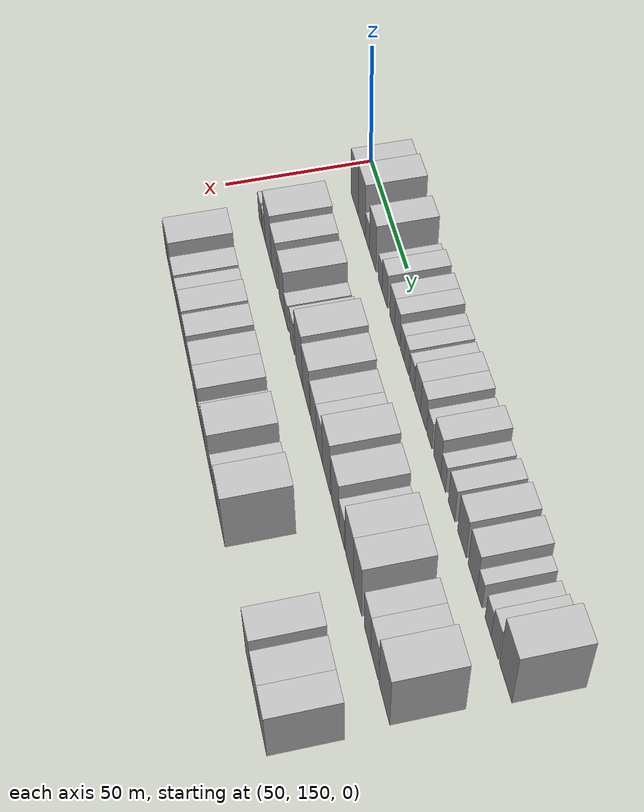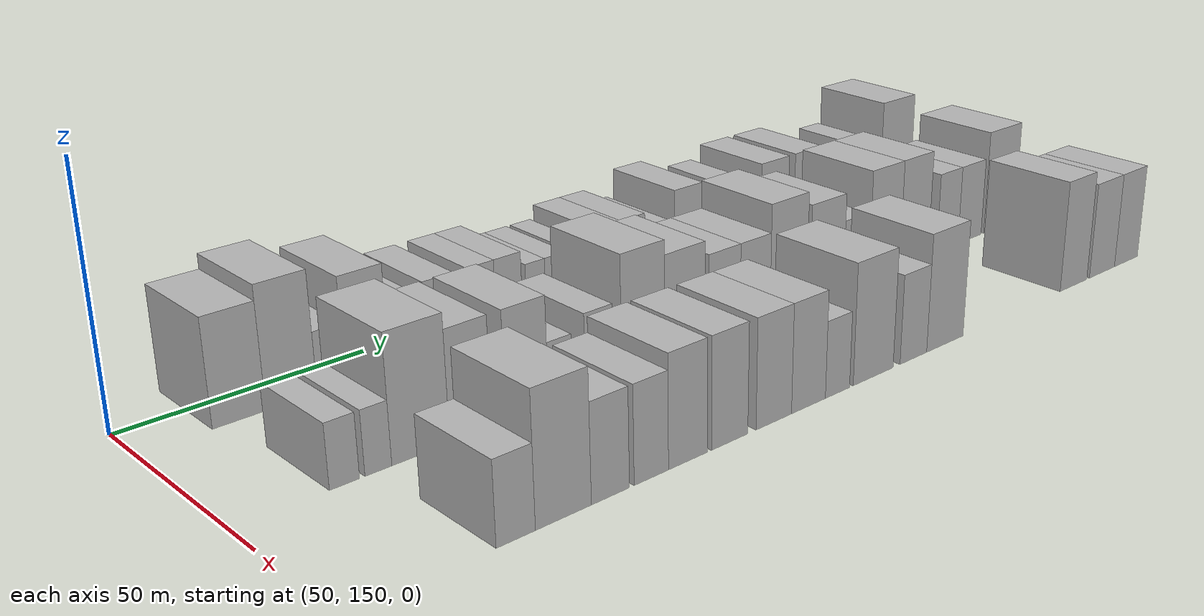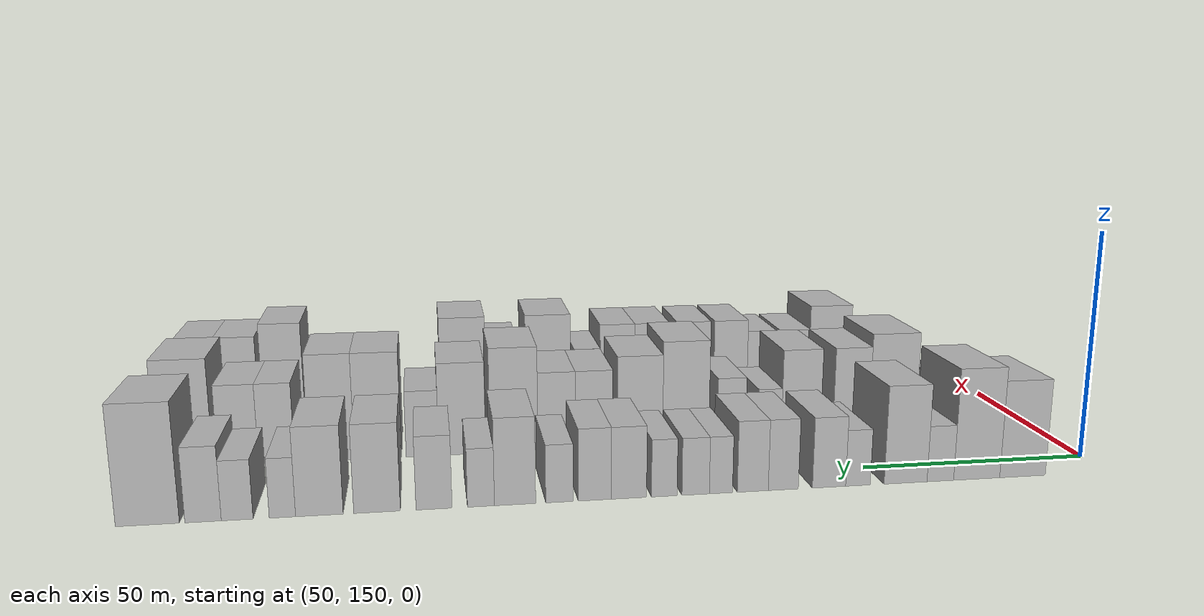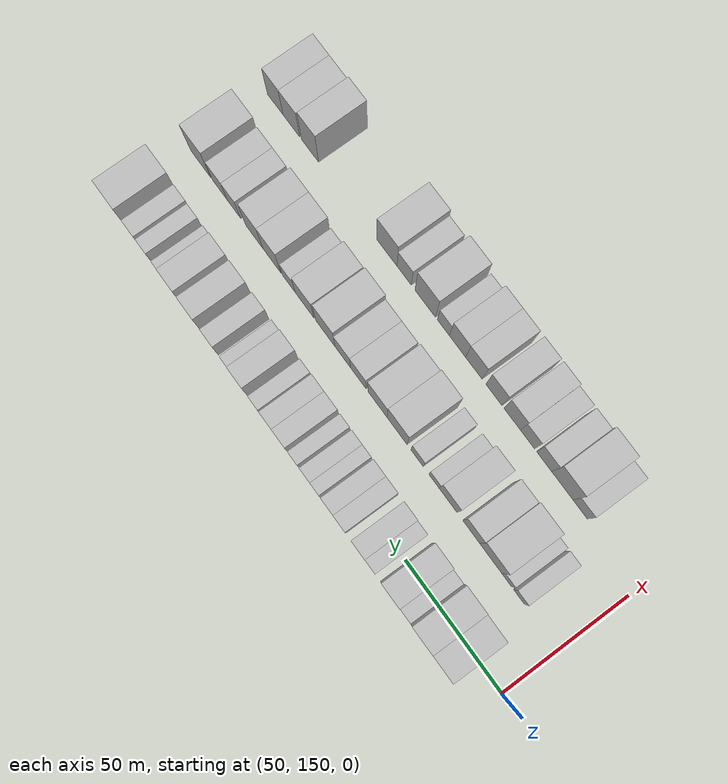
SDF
<sdf version="1.6">
 <world name="default">
  <model name="building_59">
   <static>1</static>
   <pose>50.0000 168.8208 0 0.000000 0.000000 0.000000</pose>
   <link name="link">
    <pose>0 0 10.50 0 0 0</pose>
    <collision name="collision"><geometry><box><size>20.0000 10.2211 21.0000</size></box></geometry></collision>
    <visual name="visual">
     <cast_shadows>0</cast_shadows>
     <geometry><box><size>20.0000 10.2211 21.0000</size></box></geometry>
     <material>
      <script>
       <uri>model://HANNAS_wall/materials/scripts</uri>
       <uri>model://HANNAS_wall/materials/textures</uri>
       <name>vrc/HANNAS_wall</name>
      </script>
     </material>
    </visual>
   </link>
  </model>
  <model name="building_60">
   <static>1</static>
   <pose>50.0000 179.0510 0 0.000000 0.000000 0.000000</pose>
   <link name="link">
    <pose>0 0 12.00 0 0 0</pose>
    <collision name="collision"><geometry><box><size>20.0000 10.2393 24.0000</size></box></geometry></collision>
    <visual name="visual">
     <cast_shadows>0</cast_shadows>
     <geometry><box><size>20.0000 10.2393 24.0000</size></box></geometry>
     <material>
      <script>
       <uri>model://HANNAS_wall/materials/scripts</uri>
       <uri>model://HANNAS_wall/materials/textures</uri>
       <name>vrc/HANNAS_wall</name>
      </script>
     </material>
    </visual>
   </link>
  </model>
  <model name="building_61">
   <static>1</static>
   <pose>50.0000 187.0893 0 0.000000 0.000000 0.000000</pose>
   <link name="link">
    <pose>0 0 6.00 0 0 0</pose>
    <collision name="collision"><geometry><box><size>20.0000 5.8373 12.0000</size></box></geometry></collision>
    <visual name="visual">
     <cast_shadows>0</cast_shadows>
     <geometry><box><size>20.0000 5.8373 12.0000</size></box></geometry>
     <material>
      <script>
       <uri>model://HANNAS_wall/materials/scripts</uri>
       <uri>model://HANNAS_wall/materials/textures</uri>
       <name>vrc/HANNAS_wall</name>
      </script>
     </material>
    </visual>
   </link>
  </model>
  <model name="building_62">
   <static>1</static>
   <pose>50.0000 194.6850 0 0.000000 0.000000 0.000000</pose>
   <link name="link">
    <pose>0 0 10.50 0 0 0</pose>
    <collision name="collision"><geometry><box><size>20.0000 9.3541 21.0000</size></box></geometry></collision>
    <visual name="visual">
     <cast_shadows>0</cast_shadows>
     <geometry><box><size>20.0000 9.3541 21.0000</size></box></geometry>
     <material>
      <script>
       <uri>model://HANNAS_wall/materials/scripts</uri>
       <uri>model://HANNAS_wall/materials/textures</uri>
       <name>vrc/HANNAS_wall</name>
      </script>
     </material>
    </visual>
   </link>
  </model>
  <model name="building_63">
   <static>1</static>
   <pose>50.0000 205.0098 0 0.000000 0.000000 0.000000</pose>
   <link name="link">
    <pose>0 0 6.00 0 0 0</pose>
    <collision name="collision"><geometry><box><size>20.0000 5.2954 12.0000</size></box></geometry></collision>
    <visual name="visual">
     <cast_shadows>0</cast_shadows>
     <geometry><box><size>20.0000 5.2954 12.0000</size></box></geometry>
     <material>
      <script>
       <uri>model://HANNAS_wall/materials/scripts</uri>
       <uri>model://HANNAS_wall/materials/textures</uri>
       <name>vrc/HANNAS_wall</name>
      </script>
     </material>
    </visual>
   </link>
  </model>
  <model name="building_64">
   <static>1</static>
   <pose>50.0000 211.2053 0 0.000000 0.000000 0.000000</pose>
   <link name="link">
    <pose>0 0 7.50 0 0 0</pose>
    <collision name="collision"><geometry><box><size>20.0000 7.0957 15.0000</size></box></geometry></collision>
    <visual name="visual">
     <cast_shadows>0</cast_shadows>
     <geometry><box><size>20.0000 7.0957 15.0000</size></box></geometry>
     <material>
      <script>
       <uri>model://HANNAS_wall/materials/scripts</uri>
       <uri>model://HANNAS_wall/materials/textures</uri>
       <name>vrc/HANNAS_wall</name>
      </script>
     </material>
    </visual>
   </link>
  </model>
  <model name="building_65">
   <static>1</static>
   <pose>50.0000 220.9267 0 0.000000 0.000000 0.000000</pose>
   <link name="link">
    <pose>0 0 7.50 0 0 0</pose>
    <collision name="collision"><geometry><box><size>20.0000 6.3471 15.0000</size></box></geometry></collision>
    <visual name="visual">
     <cast_shadows>0</cast_shadows>
     <geometry><box><size>20.0000 6.3471 15.0000</size></box></geometry>
     <material>
      <script>
       <uri>model://HANNAS_wall/materials/scripts</uri>
       <uri>model://HANNAS_wall/materials/textures</uri>
       <name>vrc/HANNAS_wall</name>
      </script>
     </material>
    </visual>
   </link>
  </model>
  <model name="building_66">
   <static>1</static>
   <pose>50.0000 227.3407 0 0.000000 0.000000 0.000000</pose>
   <link name="link">
    <pose>0 0 7.50 0 0 0</pose>
    <collision name="collision"><geometry><box><size>20.0000 6.4809 15.0000</size></box></geometry></collision>
    <visual name="visual">
     <cast_shadows>0</cast_shadows>
     <geometry><box><size>20.0000 6.4809 15.0000</size></box></geometry>
     <material>
      <script>
       <uri>model://HANNAS_wall/materials/scripts</uri>
       <uri>model://HANNAS_wall/materials/textures</uri>
       <name>vrc/HANNAS_wall</name>
      </script>
     </material>
    </visual>
   </link>
  </model>
  <model name="building_67">
   <static>1</static>
   <pose>50.0000 233.9903 0 0.000000 0.000000 0.000000</pose>
   <link name="link">
    <pose>0 0 6.00 0 0 0</pose>
    <collision name="collision"><geometry><box><size>20.0000 4.8182 12.0000</size></box></geometry></collision>
    <visual name="visual">
     <cast_shadows>0</cast_shadows>
     <geometry><box><size>20.0000 4.8182 12.0000</size></box></geometry>
     <material>
      <script>
       <uri>model://HANNAS_wall/materials/scripts</uri>
       <uri>model://HANNAS_wall/materials/textures</uri>
       <name>vrc/HANNAS_wall</name>
      </script>
     </material>
    </visual>
   </link>
  </model>
  <model name="building_68">
   <static>1</static>
   <pose>50.0000 239.2247 0 0.000000 0.000000 0.000000</pose>
   <link name="link">
    <pose>0 0 6.00 0 0 0</pose>
    <collision name="collision"><geometry><box><size>20.0000 5.6506 12.0000</size></box></geometry></collision>
    <visual name="visual">
     <cast_shadows>0</cast_shadows>
     <geometry><box><size>20.0000 5.6506 12.0000</size></box></geometry>
     <material>
      <script>
       <uri>model://HANNAS_wall/materials/scripts</uri>
       <uri>model://HANNAS_wall/materials/textures</uri>
       <name>vrc/HANNAS_wall</name>
      </script>
     </material>
    </visual>
   </link>
  </model>
  <model name="building_69">
   <static>1</static>
   <pose>50.0000 245.6717 0 0.000000 0.000000 0.000000</pose>
   <link name="link">
    <pose>0 0 6.00 0 0 0</pose>
    <collision name="collision"><geometry><box><size>20.0000 5.2436 12.0000</size></box></geometry></collision>
    <visual name="visual">
     <cast_shadows>0</cast_shadows>
     <geometry><box><size>20.0000 5.2436 12.0000</size></box></geometry>
     <material>
      <script>
       <uri>model://HANNAS_wall/materials/scripts</uri>
       <uri>model://HANNAS_wall/materials/textures</uri>
       <name>vrc/HANNAS_wall</name>
      </script>
     </material>
    </visual>
   </link>
  </model>
  <model name="building_70">
   <static>1</static>
   <pose>50.0000 252.8627 0 0.000000 0.000000 0.000000</pose>
   <link name="link">
    <pose>0 0 7.50 0 0 0</pose>
    <collision name="collision"><geometry><box><size>20.0000 7.1384 15.0000</size></box></geometry></collision>
    <visual name="visual">
     <cast_shadows>0</cast_shadows>
     <geometry><box><size>20.0000 7.1384 15.0000</size></box></geometry>
     <material>
      <script>
       <uri>model://HANNAS_wall/materials/scripts</uri>
       <uri>model://HANNAS_wall/materials/textures</uri>
       <name>vrc/HANNAS_wall</name>
      </script>
     </material>
    </visual>
   </link>
  </model>
  <model name="building_71">
   <static>1</static>
   <pose>50.0000 259.7722 0 0.000000 0.000000 0.000000</pose>
   <link name="link">
    <pose>0 0 7.50 0 0 0</pose>
    <collision name="collision"><geometry><box><size>20.0000 6.6804 15.0000</size></box></geometry></collision>
    <visual name="visual">
     <cast_shadows>0</cast_shadows>
     <geometry><box><size>20.0000 6.6804 15.0000</size></box></geometry>
     <material>
      <script>
       <uri>model://HANNAS_wall/materials/scripts</uri>
       <uri>model://HANNAS_wall/materials/textures</uri>
       <name>vrc/HANNAS_wall</name>
      </script>
     </material>
    </visual>
   </link>
  </model>
  <model name="building_72">
   <static>1</static>
   <pose>50.0000 266.8628 0 0.000000 0.000000 0.000000</pose>
   <link name="link">
    <pose>0 0 6.00 0 0 0</pose>
    <collision name="collision"><geometry><box><size>20.0000 5.5008 12.0000</size></box></geometry></collision>
    <visual name="visual">
     <cast_shadows>0</cast_shadows>
     <geometry><box><size>20.0000 5.5008 12.0000</size></box></geometry>
     <material>
      <script>
       <uri>model://HANNAS_wall/materials/scripts</uri>
       <uri>model://HANNAS_wall/materials/textures</uri>
       <name>vrc/HANNAS_wall</name>
      </script>
     </material>
    </visual>
   </link>
  </model>
  <model name="building_73">
   <static>1</static>
   <pose>50.0000 275.6861 0 0.000000 0.000000 0.000000</pose>
   <link name="link">
    <pose>0 0 9.00 0 0 0</pose>
    <collision name="collision"><geometry><box><size>20.0000 8.1459 18.0000</size></box></geometry></collision>
    <visual name="visual">
     <cast_shadows>0</cast_shadows>
     <geometry><box><size>20.0000 8.1459 18.0000</size></box></geometry>
     <material>
      <script>
       <uri>model://HANNAS_wall/materials/scripts</uri>
       <uri>model://HANNAS_wall/materials/textures</uri>
       <name>vrc/HANNAS_wall</name>
      </script>
     </material>
    </visual>
   </link>
  </model>
  <model name="building_74">
   <static>1</static>
   <pose>50.0000 282.4000 0 0.000000 0.000000 0.000000</pose>
   <link name="link">
    <pose>0 0 6.00 0 0 0</pose>
    <collision name="collision"><geometry><box><size>20.0000 5.2819 12.0000</size></box></geometry></collision>
    <visual name="visual">
     <cast_shadows>0</cast_shadows>
     <geometry><box><size>20.0000 5.2819 12.0000</size></box></geometry>
     <material>
      <script>
       <uri>model://HANNAS_wall/materials/scripts</uri>
       <uri>model://HANNAS_wall/materials/textures</uri>
       <name>vrc/HANNAS_wall</name>
      </script>
     </material>
    </visual>
   </link>
  </model>
  <model name="building_75">
   <static>1</static>
   <pose>50.0000 291.5356 0 0.000000 0.000000 0.000000</pose>
   <link name="link">
    <pose>0 0 7.50 0 0 0</pose>
    <collision name="collision"><geometry><box><size>20.0000 6.9893 15.0000</size></box></geometry></collision>
    <visual name="visual">
     <cast_shadows>0</cast_shadows>
     <geometry><box><size>20.0000 6.9893 15.0000</size></box></geometry>
     <material>
      <script>
       <uri>model://HANNAS_wall/materials/scripts</uri>
       <uri>model://HANNAS_wall/materials/textures</uri>
       <name>vrc/HANNAS_wall</name>
      </script>
     </material>
    </visual>
   </link>
  </model>
  <model name="building_76">
   <static>1</static>
   <pose>50.0000 302.4908 0 0.000000 0.000000 0.000000</pose>
   <link name="link">
    <pose>0 0 9.00 0 0 0</pose>
    <collision name="collision"><geometry><box><size>20.0000 8.9212 18.0000</size></box></geometry></collision>
    <visual name="visual">
     <cast_shadows>0</cast_shadows>
     <geometry><box><size>20.0000 8.9212 18.0000</size></box></geometry>
     <material>
      <script>
       <uri>model://HANNAS_wall/materials/scripts</uri>
       <uri>model://HANNAS_wall/materials/textures</uri>
       <name>vrc/HANNAS_wall</name>
      </script>
     </material>
    </visual>
   </link>
  </model>
  <model name="building_77">
   <static>1</static>
   <pose>50.0000 313.4377 0 0.000000 0.000000 0.000000</pose>
   <link name="link">
    <pose>0 0 9.00 0 0 0</pose>
    <collision name="collision"><geometry><box><size>20.0000 8.9725 18.0000</size></box></geometry></collision>
    <visual name="visual">
     <cast_shadows>0</cast_shadows>
     <geometry><box><size>20.0000 8.9725 18.0000</size></box></geometry>
     <material>
      <script>
       <uri>model://HANNAS_wall/materials/scripts</uri>
       <uri>model://HANNAS_wall/materials/textures</uri>
       <name>vrc/HANNAS_wall</name>
      </script>
     </material>
    </visual>
   </link>
  </model>
  <model name="building_78">
   <static>1</static>
   <pose>50.0000 320.3829 0 0.000000 0.000000 0.000000</pose>
   <link name="link">
    <pose>0 0 6.00 0 0 0</pose>
    <collision name="collision"><geometry><box><size>20.0000 4.9179 12.0000</size></box></geometry></collision>
    <visual name="visual">
     <cast_shadows>0</cast_shadows>
     <geometry><box><size>20.0000 4.9179 12.0000</size></box></geometry>
     <material>
      <script>
       <uri>model://HANNAS_wall/materials/scripts</uri>
       <uri>model://HANNAS_wall/materials/textures</uri>
       <name>vrc/HANNAS_wall</name>
      </script>
     </material>
    </visual>
   </link>
  </model>
  <model name="building_79">
   <static>1</static>
   <pose>50.0000 328.7776 0 0.000000 0.000000 0.000000</pose>
   <link name="link">
    <pose>0 0 6.00 0 0 0</pose>
    <collision name="collision"><geometry><box><size>20.0000 5.8714 12.0000</size></box></geometry></collision>
    <visual name="visual">
     <cast_shadows>0</cast_shadows>
     <geometry><box><size>20.0000 5.8714 12.0000</size></box></geometry>
     <material>
      <script>
       <uri>model://HANNAS_wall/materials/scripts</uri>
       <uri>model://HANNAS_wall/materials/textures</uri>
       <name>vrc/HANNAS_wall</name>
      </script>
     </material>
    </visual>
   </link>
  </model>
  <model name="building_80">
   <static>1</static>
   <pose>50.0000 335.0555 0 0.000000 0.000000 0.000000</pose>
   <link name="link">
    <pose>0 0 7.50 0 0 0</pose>
    <collision name="collision"><geometry><box><size>20.0000 6.6845 15.0000</size></box></geometry></collision>
    <visual name="visual">
     <cast_shadows>0</cast_shadows>
     <geometry><box><size>20.0000 6.6845 15.0000</size></box></geometry>
     <material>
      <script>
       <uri>model://HANNAS_wall/materials/scripts</uri>
       <uri>model://HANNAS_wall/materials/textures</uri>
       <name>vrc/HANNAS_wall</name>
      </script>
     </material>
    </visual>
   </link>
  </model>
  <model name="building_81">
   <static>1</static>
   <pose>50.0000 345.1932 0 0.000000 0.000000 0.000000</pose>
   <link name="link">
    <pose>0 0 12.00 0 0 0</pose>
    <collision name="collision"><geometry><box><size>20.0000 11.5908 24.0000</size></box></geometry></collision>
    <visual name="visual">
     <cast_shadows>0</cast_shadows>
     <geometry><box><size>20.0000 11.5908 24.0000</size></box></geometry>
     <material>
      <script>
       <uri>model://HANNAS_wall/materials/scripts</uri>
       <uri>model://HANNAS_wall/materials/textures</uri>
       <name>vrc/HANNAS_wall</name>
      </script>
     </material>
    </visual>
   </link>
  </model>
  <model name="building_139">
   <static>1</static>
   <pose>82.0000 170.2102 0 0.000000 0.000000 0.000000</pose>
   <link name="link">
    <pose>0 0 6.00 0 0 0</pose>
    <collision name="collision"><geometry><box><size>20.0000 5.5726 12.0000</size></box></geometry></collision>
    <visual name="visual">
     <cast_shadows>0</cast_shadows>
     <geometry><box><size>20.0000 5.5726 12.0000</size></box></geometry>
     <material>
      <script>
       <uri>model://HANNAS_wall/materials/scripts</uri>
       <uri>model://HANNAS_wall/materials/textures</uri>
       <name>vrc/HANNAS_wall</name>
      </script>
     </material>
    </visual>
   </link>
  </model>
  <model name="building_140">
   <static>1</static>
   <pose>82.0000 176.5532 0 0.000000 0.000000 0.000000</pose>
   <link name="link">
    <pose>0 0 6.00 0 0 0</pose>
    <collision name="collision"><geometry><box><size>20.0000 5.1133 12.0000</size></box></geometry></collision>
    <visual name="visual">
     <cast_shadows>0</cast_shadows>
     <geometry><box><size>20.0000 5.1133 12.0000</size></box></geometry>
     <material>
      <script>
       <uri>model://HANNAS_wall/materials/scripts</uri>
       <uri>model://HANNAS_wall/materials/textures</uri>
       <name>vrc/HANNAS_wall</name>
      </script>
     </material>
    </visual>
   </link>
  </model>
  <model name="building_141">
   <static>1</static>
   <pose>82.0000 184.8595 0 0.000000 0.000000 0.000000</pose>
   <link name="link">
    <pose>0 0 12.00 0 0 0</pose>
    <collision name="collision"><geometry><box><size>20.0000 11.4994 24.0000</size></box></geometry></collision>
    <visual name="visual">
     <cast_shadows>0</cast_shadows>
     <geometry><box><size>20.0000 11.4994 24.0000</size></box></geometry>
     <material>
      <script>
       <uri>model://HANNAS_wall/materials/scripts</uri>
       <uri>model://HANNAS_wall/materials/textures</uri>
       <name>vrc/HANNAS_wall</name>
      </script>
     </material>
    </visual>
   </link>
  </model>
  <model name="building_142">
   <static>1</static>
   <pose>82.0000 194.9792 0 0.000000 0.000000 0.000000</pose>
   <link name="link">
    <pose>0 0 10.50 0 0 0</pose>
    <collision name="collision"><geometry><box><size>20.0000 8.7399 21.0000</size></box></geometry></collision>
    <visual name="visual">
     <cast_shadows>0</cast_shadows>
     <geometry><box><size>20.0000 8.7399 21.0000</size></box></geometry>
     <material>
      <script>
       <uri>model://HANNAS_wall/materials/scripts</uri>
       <uri>model://HANNAS_wall/materials/textures</uri>
       <name>vrc/HANNAS_wall</name>
      </script>
     </material>
    </visual>
   </link>
  </model>
  <model name="building_143">
   <static>1</static>
   <pose>82.0000 207.0401 0 0.000000 0.000000 0.000000</pose>
   <link name="link">
    <pose>0 0 10.50 0 0 0</pose>
    <collision name="collision"><geometry><box><size>20.0000 9.3818 21.0000</size></box></geometry></collision>
    <visual name="visual">
     <cast_shadows>0</cast_shadows>
     <geometry><box><size>20.0000 9.3818 21.0000</size></box></geometry>
     <material>
      <script>
       <uri>model://HANNAS_wall/materials/scripts</uri>
       <uri>model://HANNAS_wall/materials/textures</uri>
       <name>vrc/HANNAS_wall</name>
      </script>
     </material>
    </visual>
   </link>
  </model>
  <model name="building_144">
   <static>1</static>
   <pose>82.0000 214.4838 0 0.000000 0.000000 0.000000</pose>
   <link name="link">
    <pose>0 0 6.00 0 0 0</pose>
    <collision name="collision"><geometry><box><size>20.0000 5.5058 12.0000</size></box></geometry></collision>
    <visual name="visual">
     <cast_shadows>0</cast_shadows>
     <geometry><box><size>20.0000 5.5058 12.0000</size></box></geometry>
     <material>
      <script>
       <uri>model://HANNAS_wall/materials/scripts</uri>
       <uri>model://HANNAS_wall/materials/textures</uri>
       <name>vrc/HANNAS_wall</name>
      </script>
     </material>
    </visual>
   </link>
  </model>
  <model name="building_145">
   <static>1</static>
   <pose>82.0000 223.5558 0 0.000000 0.000000 0.000000</pose>
   <link name="link">
    <pose>0 0 7.50 0 0 0</pose>
    <collision name="collision"><geometry><box><size>20.0000 6.6380 15.0000</size></box></geometry></collision>
    <visual name="visual">
     <cast_shadows>0</cast_shadows>
     <geometry><box><size>20.0000 6.6380 15.0000</size></box></geometry>
     <material>
      <script>
       <uri>model://HANNAS_wall/materials/scripts</uri>
       <uri>model://HANNAS_wall/materials/textures</uri>
       <name>vrc/HANNAS_wall</name>
      </script>
     </material>
    </visual>
   </link>
  </model>
  <model name="building_146">
   <static>1</static>
   <pose>82.0000 234.2435 0 0.000000 0.000000 0.000000</pose>
   <link name="link">
    <pose>0 0 12.00 0 0 0</pose>
    <collision name="collision"><geometry><box><size>20.0000 10.7374 24.0000</size></box></geometry></collision>
    <visual name="visual">
     <cast_shadows>0</cast_shadows>
     <geometry><box><size>20.0000 10.7374 24.0000</size></box></geometry>
     <material>
      <script>
       <uri>model://HANNAS_wall/materials/scripts</uri>
       <uri>model://HANNAS_wall/materials/textures</uri>
       <name>vrc/HANNAS_wall</name>
      </script>
     </material>
    </visual>
   </link>
  </model>
  <model name="building_147">
   <static>1</static>
   <pose>82.0000 244.8374 0 0.000000 0.000000 0.000000</pose>
   <link name="link">
    <pose>0 0 10.50 0 0 0</pose>
    <collision name="collision"><geometry><box><size>20.0000 10.4504 21.0000</size></box></geometry></collision>
    <visual name="visual">
     <cast_shadows>0</cast_shadows>
     <geometry><box><size>20.0000 10.4504 21.0000</size></box></geometry>
     <material>
      <script>
       <uri>model://HANNAS_wall/materials/scripts</uri>
       <uri>model://HANNAS_wall/materials/textures</uri>
       <name>vrc/HANNAS_wall</name>
      </script>
     </material>
    </visual>
   </link>
  </model>
  <model name="building_148">
   <static>1</static>
   <pose>82.0000 255.3198 0 0.000000 0.000000 0.000000</pose>
   <link name="link">
    <pose>0 0 9.00 0 0 0</pose>
    <collision name="collision"><geometry><box><size>20.0000 8.5143 18.0000</size></box></geometry></collision>
    <visual name="visual">
     <cast_shadows>0</cast_shadows>
     <geometry><box><size>20.0000 8.5143 18.0000</size></box></geometry>
     <material>
      <script>
       <uri>model://HANNAS_wall/materials/scripts</uri>
       <uri>model://HANNAS_wall/materials/textures</uri>
       <name>vrc/HANNAS_wall</name>
      </script>
     </material>
    </visual>
   </link>
  </model>
  <model name="building_149">
   <static>1</static>
   <pose>82.0000 263.8152 0 0.000000 0.000000 0.000000</pose>
   <link name="link">
    <pose>0 0 9.00 0 0 0</pose>
    <collision name="collision"><geometry><box><size>20.0000 8.4764 18.0000</size></box></geometry></collision>
    <visual name="visual">
     <cast_shadows>0</cast_shadows>
     <geometry><box><size>20.0000 8.4764 18.0000</size></box></geometry>
     <material>
      <script>
       <uri>model://HANNAS_wall/materials/scripts</uri>
       <uri>model://HANNAS_wall/materials/textures</uri>
       <name>vrc/HANNAS_wall</name>
      </script>
     </material>
    </visual>
   </link>
  </model>
  <model name="building_150">
   <static>1</static>
   <pose>82.0000 273.3980 0 0.000000 0.000000 0.000000</pose>
   <link name="link">
    <pose>0 0 12.00 0 0 0</pose>
    <collision name="collision"><geometry><box><size>20.0000 10.6893 24.0000</size></box></geometry></collision>
    <visual name="visual">
     <cast_shadows>0</cast_shadows>
     <geometry><box><size>20.0000 10.6893 24.0000</size></box></geometry>
     <material>
      <script>
       <uri>model://HANNAS_wall/materials/scripts</uri>
       <uri>model://HANNAS_wall/materials/textures</uri>
       <name>vrc/HANNAS_wall</name>
      </script>
     </material>
    </visual>
   </link>
  </model>
  <model name="building_151">
   <static>1</static>
   <pose>82.0000 284.9226 0 0.000000 0.000000 0.000000</pose>
   <link name="link">
    <pose>0 0 10.50 0 0 0</pose>
    <collision name="collision"><geometry><box><size>20.0000 10.3599 21.0000</size></box></geometry></collision>
    <visual name="visual">
     <cast_shadows>0</cast_shadows>
     <geometry><box><size>20.0000 10.3599 21.0000</size></box></geometry>
     <material>
      <script>
       <uri>model://HANNAS_wall/materials/scripts</uri>
       <uri>model://HANNAS_wall/materials/textures</uri>
       <name>vrc/HANNAS_wall</name>
      </script>
     </material>
    </visual>
   </link>
  </model>
  <model name="building_152">
   <static>1</static>
   <pose>82.0000 293.6690 0 0.000000 0.000000 0.000000</pose>
   <link name="link">
    <pose>0 0 7.50 0 0 0</pose>
    <collision name="collision"><geometry><box><size>20.0000 7.1328 15.0000</size></box></geometry></collision>
    <visual name="visual">
     <cast_shadows>0</cast_shadows>
     <geometry><box><size>20.0000 7.1328 15.0000</size></box></geometry>
     <material>
      <script>
       <uri>model://HANNAS_wall/materials/scripts</uri>
       <uri>model://HANNAS_wall/materials/textures</uri>
       <name>vrc/HANNAS_wall</name>
      </script>
     </material>
    </visual>
   </link>
  </model>
  <model name="building_153">
   <static>1</static>
   <pose>82.0000 303.3173 0 0.000000 0.000000 0.000000</pose>
   <link name="link">
    <pose>0 0 12.00 0 0 0</pose>
    <collision name="collision"><geometry><box><size>20.0000 10.1638 24.0000</size></box></geometry></collision>
    <visual name="visual">
     <cast_shadows>0</cast_shadows>
     <geometry><box><size>20.0000 10.1638 24.0000</size></box></geometry>
     <material>
      <script>
       <uri>model://HANNAS_wall/materials/scripts</uri>
       <uri>model://HANNAS_wall/materials/textures</uri>
       <name>vrc/HANNAS_wall</name>
      </script>
     </material>
    </visual>
   </link>
  </model>
  <model name="building_154">
   <static>1</static>
   <pose>82.0000 313.2810 0 0.000000 0.000000 0.000000</pose>
   <link name="link">
    <pose>0 0 12.00 0 0 0</pose>
    <collision name="collision"><geometry><box><size>20.0000 9.7637 24.0000</size></box></geometry></collision>
    <visual name="visual">
     <cast_shadows>0</cast_shadows>
     <geometry><box><size>20.0000 9.7637 24.0000</size></box></geometry>
     <material>
      <script>
       <uri>model://HANNAS_wall/materials/scripts</uri>
       <uri>model://HANNAS_wall/materials/textures</uri>
       <name>vrc/HANNAS_wall</name>
      </script>
     </material>
    </visual>
   </link>
  </model>
  <model name="building_155">
   <static>1</static>
   <pose>82.0000 324.9774 0 0.000000 0.000000 0.000000</pose>
   <link name="link">
    <pose>0 0 9.00 0 0 0</pose>
    <collision name="collision"><geometry><box><size>20.0000 7.6290 18.0000</size></box></geometry></collision>
    <visual name="visual">
     <cast_shadows>0</cast_shadows>
     <geometry><box><size>20.0000 7.6290 18.0000</size></box></geometry>
     <material>
      <script>
       <uri>model://HANNAS_wall/materials/scripts</uri>
       <uri>model://HANNAS_wall/materials/textures</uri>
       <name>vrc/HANNAS_wall</name>
      </script>
     </material>
    </visual>
   </link>
  </model>
  <model name="building_156">
   <static>1</static>
   <pose>82.0000 333.0379 0 0.000000 0.000000 0.000000</pose>
   <link name="link">
    <pose>0 0 9.00 0 0 0</pose>
    <collision name="collision"><geometry><box><size>20.0000 8.4921 18.0000</size></box></geometry></collision>
    <visual name="visual">
     <cast_shadows>0</cast_shadows>
     <geometry><box><size>20.0000 8.4921 18.0000</size></box></geometry>
     <material>
      <script>
       <uri>model://HANNAS_wall/materials/scripts</uri>
       <uri>model://HANNAS_wall/materials/textures</uri>
       <name>vrc/HANNAS_wall</name>
      </script>
     </material>
    </visual>
   </link>
  </model>
  <model name="building_157">
   <static>1</static>
   <pose>82.0000 344.1357 0 0.000000 0.000000 0.000000</pose>
   <link name="link">
    <pose>0 0 12.00 0 0 0</pose>
    <collision name="collision"><geometry><box><size>20.0000 11.7035 24.0000</size></box></geometry></collision>
    <visual name="visual">
     <cast_shadows>0</cast_shadows>
     <geometry><box><size>20.0000 11.7035 24.0000</size></box></geometry>
     <material>
      <script>
       <uri>model://HANNAS_wall/materials/scripts</uri>
       <uri>model://HANNAS_wall/materials/textures</uri>
       <name>vrc/HANNAS_wall</name>
      </script>
     </material>
    </visual>
   </link>
  </model>
  <model name="building_214">
   <static>1</static>
   <pose>114.0000 180.2237 0 0.000000 0.000000 0.000000</pose>
   <link name="link">
    <pose>0 0 7.50 0 0 0</pose>
    <collision name="collision"><geometry><box><size>20.0000 7.3857 15.0000</size></box></geometry></collision>
    <visual name="visual">
     <cast_shadows>0</cast_shadows>
     <geometry><box><size>20.0000 7.3857 15.0000</size></box></geometry>
     <material>
      <script>
       <uri>model://HANNAS_wall/materials/scripts</uri>
       <uri>model://HANNAS_wall/materials/textures</uri>
       <name>vrc/HANNAS_wall</name>
      </script>
     </material>
    </visual>
   </link>
  </model>
  <model name="building_215">
   <static>1</static>
   <pose>114.0000 189.4387 0 0.000000 0.000000 0.000000</pose>
   <link name="link">
    <pose>0 0 12.00 0 0 0</pose>
    <collision name="collision"><geometry><box><size>20.0000 11.0443 24.0000</size></box></geometry></collision>
    <visual name="visual">
     <cast_shadows>0</cast_shadows>
     <geometry><box><size>20.0000 11.0443 24.0000</size></box></geometry>
     <material>
      <script>
       <uri>model://HANNAS_wall/materials/scripts</uri>
       <uri>model://HANNAS_wall/materials/textures</uri>
       <name>vrc/HANNAS_wall</name>
      </script>
     </material>
    </visual>
   </link>
  </model>
  <model name="building_216">
   <static>1</static>
   <pose>114.0000 198.9049 0 0.000000 0.000000 0.000000</pose>
   <link name="link">
    <pose>0 0 9.00 0 0 0</pose>
    <collision name="collision"><geometry><box><size>20.0000 7.8880 18.0000</size></box></geometry></collision>
    <visual name="visual">
     <cast_shadows>0</cast_shadows>
     <geometry><box><size>20.0000 7.8880 18.0000</size></box></geometry>
     <material>
      <script>
       <uri>model://HANNAS_wall/materials/scripts</uri>
       <uri>model://HANNAS_wall/materials/textures</uri>
       <name>vrc/HANNAS_wall</name>
      </script>
     </material>
    </visual>
   </link>
  </model>
  <model name="building_217">
   <static>1</static>
   <pose>114.0000 207.5673 0 0.000000 0.000000 0.000000</pose>
   <link name="link">
    <pose>0 0 9.00 0 0 0</pose>
    <collision name="collision"><geometry><box><size>20.0000 7.4368 18.0000</size></box></geometry></collision>
    <visual name="visual">
     <cast_shadows>0</cast_shadows>
     <geometry><box><size>20.0000 7.4368 18.0000</size></box></geometry>
     <material>
      <script>
       <uri>model://HANNAS_wall/materials/scripts</uri>
       <uri>model://HANNAS_wall/materials/textures</uri>
       <name>vrc/HANNAS_wall</name>
      </script>
     </material>
    </visual>
   </link>
  </model>
  <model name="building_218">
   <static>1</static>
   <pose>114.0000 215.6517 0 0.000000 0.000000 0.000000</pose>
   <link name="link">
    <pose>0 0 10.50 0 0 0</pose>
    <collision name="collision"><geometry><box><size>20.0000 8.7320 21.0000</size></box></geometry></collision>
    <visual name="visual">
     <cast_shadows>0</cast_shadows>
     <geometry><box><size>20.0000 8.7320 21.0000</size></box></geometry>
     <material>
      <script>
       <uri>model://HANNAS_wall/materials/scripts</uri>
       <uri>model://HANNAS_wall/materials/textures</uri>
       <name>vrc/HANNAS_wall</name>
      </script>
     </material>
    </visual>
   </link>
  </model>
  <model name="building_219">
   <static>1</static>
   <pose>114.0000 225.3145 0 0.000000 0.000000 0.000000</pose>
   <link name="link">
    <pose>0 0 10.50 0 0 0</pose>
    <collision name="collision"><geometry><box><size>20.0000 8.5937 21.0000</size></box></geometry></collision>
    <visual name="visual">
     <cast_shadows>0</cast_shadows>
     <geometry><box><size>20.0000 8.5937 21.0000</size></box></geometry>
     <material>
      <script>
       <uri>model://HANNAS_wall/materials/scripts</uri>
       <uri>model://HANNAS_wall/materials/textures</uri>
       <name>vrc/HANNAS_wall</name>
      </script>
     </material>
    </visual>
   </link>
  </model>
  <model name="building_220">
   <static>1</static>
   <pose>114.0000 236.0336 0 0.000000 0.000000 0.000000</pose>
   <link name="link">
    <pose>0 0 10.50 0 0 0</pose>
    <collision name="collision"><geometry><box><size>20.0000 8.8445 21.0000</size></box></geometry></collision>
    <visual name="visual">
     <cast_shadows>0</cast_shadows>
     <geometry><box><size>20.0000 8.8445 21.0000</size></box></geometry>
     <material>
      <script>
       <uri>model://HANNAS_wall/materials/scripts</uri>
       <uri>model://HANNAS_wall/materials/textures</uri>
       <name>vrc/HANNAS_wall</name>
      </script>
     </material>
    </visual>
   </link>
  </model>
  <model name="building_221">
   <static>1</static>
   <pose>114.0000 244.8488 0 0.000000 0.000000 0.000000</pose>
   <link name="link">
    <pose>0 0 10.50 0 0 0</pose>
    <collision name="collision"><geometry><box><size>20.0000 8.7859 21.0000</size></box></geometry></collision>
    <visual name="visual">
     <cast_shadows>0</cast_shadows>
     <geometry><box><size>20.0000 8.7859 21.0000</size></box></geometry>
     <material>
      <script>
       <uri>model://HANNAS_wall/materials/scripts</uri>
       <uri>model://HANNAS_wall/materials/textures</uri>
       <name>vrc/HANNAS_wall</name>
      </script>
     </material>
    </visual>
   </link>
  </model>
  <model name="building_222">
   <static>1</static>
   <pose>114.0000 252.4922 0 0.000000 0.000000 0.000000</pose>
   <link name="link">
    <pose>0 0 7.50 0 0 0</pose>
    <collision name="collision"><geometry><box><size>20.0000 6.5009 15.0000</size></box></geometry></collision>
    <visual name="visual">
     <cast_shadows>0</cast_shadows>
     <geometry><box><size>20.0000 6.5009 15.0000</size></box></geometry>
     <material>
      <script>
       <uri>model://HANNAS_wall/materials/scripts</uri>
       <uri>model://HANNAS_wall/materials/textures</uri>
       <name>vrc/HANNAS_wall</name>
      </script>
     </material>
    </visual>
   </link>
  </model>
  <model name="building_223">
   <static>1</static>
   <pose>114.0000 262.3497 0 0.000000 0.000000 0.000000</pose>
   <link name="link">
    <pose>0 0 12.00 0 0 0</pose>
    <collision name="collision"><geometry><box><size>20.0000 11.2140 24.0000</size></box></geometry></collision>
    <visual name="visual">
     <cast_shadows>0</cast_shadows>
     <geometry><box><size>20.0000 11.2140 24.0000</size></box></geometry>
     <material>
      <script>
       <uri>model://HANNAS_wall/materials/scripts</uri>
       <uri>model://HANNAS_wall/materials/textures</uri>
       <name>vrc/HANNAS_wall</name>
      </script>
     </material>
    </visual>
   </link>
  </model>
  <model name="building_224">
   <static>1</static>
   <pose>114.0000 273.8940 0 0.000000 0.000000 0.000000</pose>
   <link name="link">
    <pose>0 0 9.00 0 0 0</pose>
    <collision name="collision"><geometry><box><size>20.0000 7.8747 18.0000</size></box></geometry></collision>
    <visual name="visual">
     <cast_shadows>0</cast_shadows>
     <geometry><box><size>20.0000 7.8747 18.0000</size></box></geometry>
     <material>
      <script>
       <uri>model://HANNAS_wall/materials/scripts</uri>
       <uri>model://HANNAS_wall/materials/textures</uri>
       <name>vrc/HANNAS_wall</name>
      </script>
     </material>
    </visual>
   </link>
  </model>
  <model name="building_225">
   <static>1</static>
   <pose>114.0000 283.4251 0 0.000000 0.000000 0.000000</pose>
   <link name="link">
    <pose>0 0 12.00 0 0 0</pose>
    <collision name="collision"><geometry><box><size>20.0000 11.1875 24.0000</size></box></geometry></collision>
    <visual name="visual">
     <cast_shadows>0</cast_shadows>
     <geometry><box><size>20.0000 11.1875 24.0000</size></box></geometry>
     <material>
      <script>
       <uri>model://HANNAS_wall/materials/scripts</uri>
       <uri>model://HANNAS_wall/materials/textures</uri>
       <name>vrc/HANNAS_wall</name>
      </script>
     </material>
    </visual>
   </link>
  </model>
  <model name="building_226">
   <static>1</static>
   <pose>114.0000 326.6890 0 0.000000 0.000000 0.000000</pose>
   <link name="link">
    <pose>0 0 12.00 0 0 0</pose>
    <collision name="collision"><geometry><box><size>20.0000 9.7801 24.0000</size></box></geometry></collision>
    <visual name="visual">
     <cast_shadows>0</cast_shadows>
     <geometry><box><size>20.0000 9.7801 24.0000</size></box></geometry>
     <material>
      <script>
       <uri>model://HANNAS_wall/materials/scripts</uri>
       <uri>model://HANNAS_wall/materials/textures</uri>
       <name>vrc/HANNAS_wall</name>
      </script>
     </material>
    </visual>
   </link>
  </model>
  <model name="building_227">
   <static>1</static>
   <pose>114.0000 337.3602 0 0.000000 0.000000 0.000000</pose>
   <link name="link">
    <pose>0 0 10.50 0 0 0</pose>
    <collision name="collision"><geometry><box><size>20.0000 9.5623 21.0000</size></box></geometry></collision>
    <visual name="visual">
     <cast_shadows>0</cast_shadows>
     <geometry><box><size>20.0000 9.5623 21.0000</size></box></geometry>
     <material>
      <script>
       <uri>model://HANNAS_wall/materials/scripts</uri>
       <uri>model://HANNAS_wall/materials/textures</uri>
       <name>vrc/HANNAS_wall</name>
      </script>
     </material>
    </visual>
   </link>
  </model>
  <model name="building_228">
   <static>1</static>
   <pose>114.0000 346.6689 0 0.000000 0.000000 0.000000</pose>
   <link name="link">
    <pose>0 0 10.50 0 0 0</pose>
    <collision name="collision"><geometry><box><size>20.0000 9.0551 21.0000</size></box></geometry></collision>
    <visual name="visual">
     <cast_shadows>0</cast_shadows>
     <geometry><box><size>20.0000 9.0551 21.0000</size></box></geometry>
     <material>
      <script>
       <uri>model://HANNAS_wall/materials/scripts</uri>
       <uri>model://HANNAS_wall/materials/textures</uri>
       <name>vrc/HANNAS_wall</name>
      </script>
     </material>
    </visual>
   </link>
  </model>
 </world>
</sdf>
